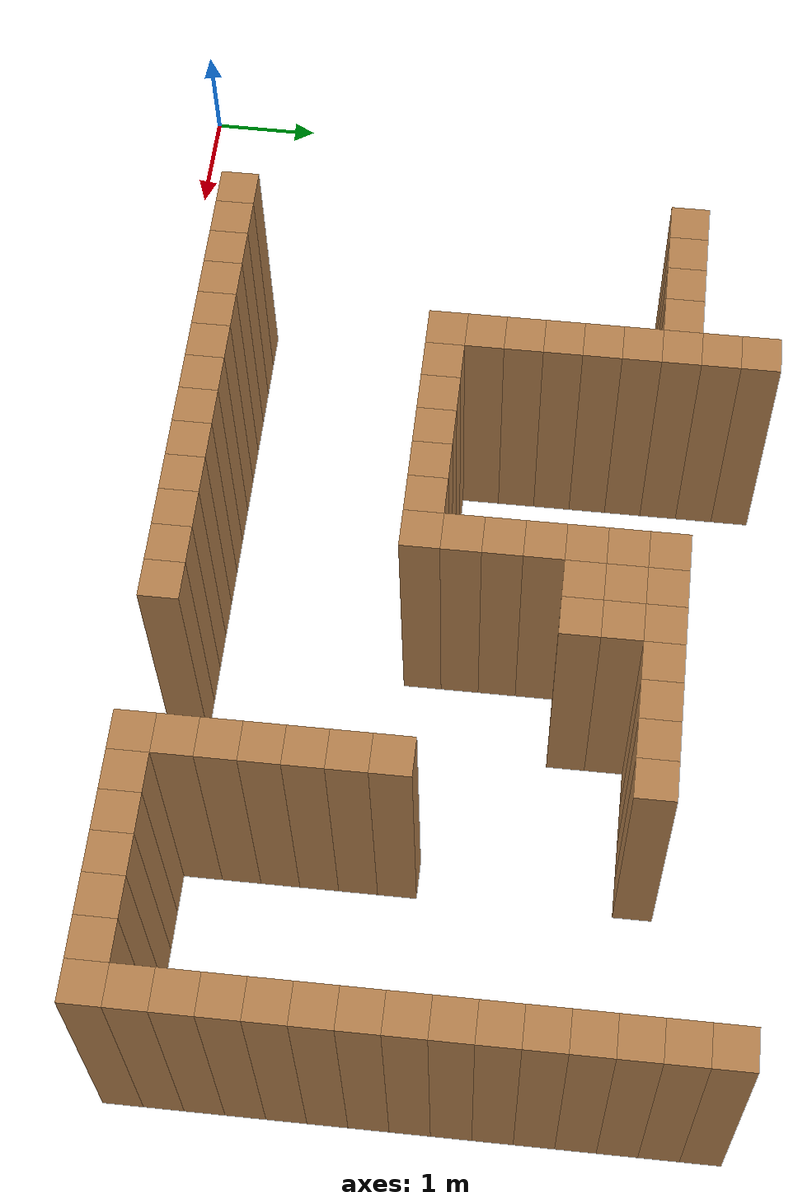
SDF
<sdf version="1.7">
 <model name="maze">
  <static>true</static>
  <link name="Wall_120">
   <collision name="Wall_120_Collision">
    <geometry><box><size>0.3333333333333333 0.3333333333333333 2.5</size></box></geometry>
    <pose>0 0 1.25 0 0 0</pose>
   </collision>
   <visual name="Wall_120_Visual">
    <pose>0 0 1.25 0 0 0</pose>
    <geometry><box><size>0.3333333333333333 0.3333333333333333 2.5</size></box></geometry>
    <material>
     <script><uri>file://media/materials/scripts/gazebo.material</uri><name>Gazebo/Wood</name></script>
     <ambient>1 1 1 1</ambient>
    </material>
    <meta><layer>0</layer></meta>
   </visual>
   <pose>4.166666666666667 5.5 0 0 0 0</pose>
  </link>
  <link name="Wall_121">
   <collision name="Wall_121_Collision">
    <geometry><box><size>0.3333333333333333 0.3333333333333333 2.5</size></box></geometry>
    <pose>0 0 1.25 0 0 0</pose>
   </collision>
   <visual name="Wall_121_Visual">
    <pose>0 0 1.25 0 0 0</pose>
    <geometry><box><size>0.3333333333333333 0.3333333333333333 2.5</size></box></geometry>
    <material>
     <script><uri>file://media/materials/scripts/gazebo.material</uri><name>Gazebo/Wood</name></script>
     <ambient>1 1 1 1</ambient>
    </material>
    <meta><layer>0</layer></meta>
   </visual>
   <pose>10.166666666666666 5.5 0 0 0 0</pose>
  </link>
  <link name="Wall_123">
   <collision name="Wall_123_Collision">
    <geometry><box><size>0.3333333333333333 0.3333333333333333 2.5</size></box></geometry>
    <pose>0 0 1.25 0 0 0</pose>
   </collision>
   <visual name="Wall_123_Visual">
    <pose>0 0 1.25 0 0 0</pose>
    <geometry><box><size>0.3333333333333333 0.3333333333333333 2.5</size></box></geometry>
    <material>
     <script><uri>file://media/materials/scripts/gazebo.material</uri><name>Gazebo/Wood</name></script>
     <ambient>1 1 1 1</ambient>
    </material>
    <meta><layer>0</layer></meta>
   </visual>
   <pose>4.166666666666667 5.166666666666667 0 0 0 0</pose>
  </link>
  <link name="Wall_124">
   <collision name="Wall_124_Collision">
    <geometry><box><size>0.3333333333333333 0.3333333333333333 2.5</size></box></geometry>
    <pose>0 0 1.25 0 0 0</pose>
   </collision>
   <visual name="Wall_124_Visual">
    <pose>0 0 1.25 0 0 0</pose>
    <geometry><box><size>0.3333333333333333 0.3333333333333333 2.5</size></box></geometry>
    <material>
     <script><uri>file://media/materials/scripts/gazebo.material</uri><name>Gazebo/Wood</name></script>
     <ambient>1 1 1 1</ambient>
    </material>
    <meta><layer>0</layer></meta>
   </visual>
   <pose>10.166666666666666 5.166666666666667 0 0 0 0</pose>
  </link>
  <link name="Wall_128">
   <collision name="Wall_128_Collision">
    <geometry><box><size>0.3333333333333333 0.3333333333333333 2.5</size></box></geometry>
    <pose>0 0 1.25 0 0 0</pose>
   </collision>
   <visual name="Wall_128_Visual">
    <pose>0 0 1.25 0 0 0</pose>
    <geometry><box><size>0.3333333333333333 0.3333333333333333 2.5</size></box></geometry>
    <material>
     <script><uri>file://media/materials/scripts/gazebo.material</uri><name>Gazebo/Wood</name></script>
     <ambient>1 1 1 1</ambient>
    </material>
    <meta><layer>0</layer></meta>
   </visual>
   <pose>2.833333333333333 4.833333333333333 0 0 0 0</pose>
  </link>
  <link name="Wall_129">
   <collision name="Wall_129_Collision">
    <geometry><box><size>0.3333333333333333 0.3333333333333333 2.5</size></box></geometry>
    <pose>0 0 1.25 0 0 0</pose>
   </collision>
   <visual name="Wall_129_Visual">
    <pose>0 0 1.25 0 0 0</pose>
    <geometry><box><size>0.3333333333333333 0.3333333333333333 2.5</size></box></geometry>
    <material>
     <script><uri>file://media/materials/scripts/gazebo.material</uri><name>Gazebo/Wood</name></script>
     <ambient>1 1 1 1</ambient>
    </material>
    <meta><layer>0</layer></meta>
   </visual>
   <pose>3.1666666666666665 4.833333333333333 0 0 0 0</pose>
  </link>
  <link name="Wall_130">
   <collision name="Wall_130_Collision">
    <geometry><box><size>0.3333333333333333 0.3333333333333333 2.5</size></box></geometry>
    <pose>0 0 1.25 0 0 0</pose>
   </collision>
   <visual name="Wall_130_Visual">
    <pose>0 0 1.25 0 0 0</pose>
    <geometry><box><size>0.3333333333333333 0.3333333333333333 2.5</size></box></geometry>
    <material>
     <script><uri>file://media/materials/scripts/gazebo.material</uri><name>Gazebo/Wood</name></script>
     <ambient>1 1 1 1</ambient>
    </material>
    <meta><layer>0</layer></meta>
   </visual>
   <pose>3.4999999999999996 4.833333333333333 0 0 0 0</pose>
  </link>
  <link name="Wall_131">
   <collision name="Wall_131_Collision">
    <geometry><box><size>0.3333333333333333 0.3333333333333333 2.5</size></box></geometry>
    <pose>0 0 1.25 0 0 0</pose>
   </collision>
   <visual name="Wall_131_Visual">
    <pose>0 0 1.25 0 0 0</pose>
    <geometry><box><size>0.3333333333333333 0.3333333333333333 2.5</size></box></geometry>
    <material>
     <script><uri>file://media/materials/scripts/gazebo.material</uri><name>Gazebo/Wood</name></script>
     <ambient>1 1 1 1</ambient>
    </material>
    <meta><layer>0</layer></meta>
   </visual>
   <pose>3.833333333333333 4.833333333333333 0 0 0 0</pose>
  </link>
  <link name="Wall_132">
   <collision name="Wall_132_Collision">
    <geometry><box><size>0.3333333333333333 0.3333333333333333 2.5</size></box></geometry>
    <pose>0 0 1.25 0 0 0</pose>
   </collision>
   <visual name="Wall_132_Visual">
    <pose>0 0 1.25 0 0 0</pose>
    <geometry><box><size>0.3333333333333333 0.3333333333333333 2.5</size></box></geometry>
    <material>
     <script><uri>file://media/materials/scripts/gazebo.material</uri><name>Gazebo/Wood</name></script>
     <ambient>1 1 1 1</ambient>
    </material>
    <meta><layer>0</layer></meta>
   </visual>
   <pose>4.166666666666667 4.833333333333333 0 0 0 0</pose>
  </link>
  <link name="Wall_133">
   <collision name="Wall_133_Collision">
    <geometry><box><size>0.3333333333333333 0.3333333333333333 2.5</size></box></geometry>
    <pose>0 0 1.25 0 0 0</pose>
   </collision>
   <visual name="Wall_133_Visual">
    <pose>0 0 1.25 0 0 0</pose>
    <geometry><box><size>0.3333333333333333 0.3333333333333333 2.5</size></box></geometry>
    <material>
     <script><uri>file://media/materials/scripts/gazebo.material</uri><name>Gazebo/Wood</name></script>
     <ambient>1 1 1 1</ambient>
    </material>
    <meta><layer>0</layer></meta>
   </visual>
   <pose>6.166666666666667 4.833333333333333 0 0 0 0</pose>
  </link>
  <link name="Wall_134">
   <collision name="Wall_134_Collision">
    <geometry><box><size>0.3333333333333333 0.3333333333333333 2.5</size></box></geometry>
    <pose>0 0 1.25 0 0 0</pose>
   </collision>
   <visual name="Wall_134_Visual">
    <pose>0 0 1.25 0 0 0</pose>
    <geometry><box><size>0.3333333333333333 0.3333333333333333 2.5</size></box></geometry>
    <material>
     <script><uri>file://media/materials/scripts/gazebo.material</uri><name>Gazebo/Wood</name></script>
     <ambient>1 1 1 1</ambient>
    </material>
    <meta><layer>0</layer></meta>
   </visual>
   <pose>6.5 4.833333333333333 0 0 0 0</pose>
  </link>
  <link name="Wall_135">
   <collision name="Wall_135_Collision">
    <geometry><box><size>0.3333333333333333 0.3333333333333333 2.5</size></box></geometry>
    <pose>0 0 1.25 0 0 0</pose>
   </collision>
   <visual name="Wall_135_Visual">
    <pose>0 0 1.25 0 0 0</pose>
    <geometry><box><size>0.3333333333333333 0.3333333333333333 2.5</size></box></geometry>
    <material>
     <script><uri>file://media/materials/scripts/gazebo.material</uri><name>Gazebo/Wood</name></script>
     <ambient>1 1 1 1</ambient>
    </material>
    <meta><layer>0</layer></meta>
   </visual>
   <pose>6.833333333333333 4.833333333333333 0 0 0 0</pose>
  </link>
  <link name="Wall_136">
   <collision name="Wall_136_Collision">
    <geometry><box><size>0.3333333333333333 0.3333333333333333 2.5</size></box></geometry>
    <pose>0 0 1.25 0 0 0</pose>
   </collision>
   <visual name="Wall_136_Visual">
    <pose>0 0 1.25 0 0 0</pose>
    <geometry><box><size>0.3333333333333333 0.3333333333333333 2.5</size></box></geometry>
    <material>
     <script><uri>file://media/materials/scripts/gazebo.material</uri><name>Gazebo/Wood</name></script>
     <ambient>1 1 1 1</ambient>
    </material>
    <meta><layer>0</layer></meta>
   </visual>
   <pose>7.166666666666667 4.833333333333333 0 0 0 0</pose>
  </link>
  <link name="Wall_137">
   <collision name="Wall_137_Collision">
    <geometry><box><size>0.3333333333333333 0.3333333333333333 2.5</size></box></geometry>
    <pose>0 0 1.25 0 0 0</pose>
   </collision>
   <visual name="Wall_137_Visual">
    <pose>0 0 1.25 0 0 0</pose>
    <geometry><box><size>0.3333333333333333 0.3333333333333333 2.5</size></box></geometry>
    <material>
     <script><uri>file://media/materials/scripts/gazebo.material</uri><name>Gazebo/Wood</name></script>
     <ambient>1 1 1 1</ambient>
    </material>
    <meta><layer>0</layer></meta>
   </visual>
   <pose>7.5 4.833333333333333 0 0 0 0</pose>
  </link>
  <link name="Wall_138">
   <collision name="Wall_138_Collision">
    <geometry><box><size>0.3333333333333333 0.3333333333333333 2.5</size></box></geometry>
    <pose>0 0 1.25 0 0 0</pose>
   </collision>
   <visual name="Wall_138_Visual">
    <pose>0 0 1.25 0 0 0</pose>
    <geometry><box><size>0.3333333333333333 0.3333333333333333 2.5</size></box></geometry>
    <material>
     <script><uri>file://media/materials/scripts/gazebo.material</uri><name>Gazebo/Wood</name></script>
     <ambient>1 1 1 1</ambient>
    </material>
    <meta><layer>0</layer></meta>
   </visual>
   <pose>7.833333333333333 4.833333333333333 0 0 0 0</pose>
  </link>
  <link name="Wall_139">
   <collision name="Wall_139_Collision">
    <geometry><box><size>0.3333333333333333 0.3333333333333333 2.5</size></box></geometry>
    <pose>0 0 1.25 0 0 0</pose>
   </collision>
   <visual name="Wall_139_Visual">
    <pose>0 0 1.25 0 0 0</pose>
    <geometry><box><size>0.3333333333333333 0.3333333333333333 2.5</size></box></geometry>
    <material>
     <script><uri>file://media/materials/scripts/gazebo.material</uri><name>Gazebo/Wood</name></script>
     <ambient>1 1 1 1</ambient>
    </material>
    <meta><layer>0</layer></meta>
   </visual>
   <pose>8.166666666666666 4.833333333333333 0 0 0 0</pose>
  </link>
  <link name="Wall_140">
   <collision name="Wall_140_Collision">
    <geometry><box><size>0.3333333333333333 0.3333333333333333 2.5</size></box></geometry>
    <pose>0 0 1.25 0 0 0</pose>
   </collision>
   <visual name="Wall_140_Visual">
    <pose>0 0 1.25 0 0 0</pose>
    <geometry><box><size>0.3333333333333333 0.3333333333333333 2.5</size></box></geometry>
    <material>
     <script><uri>file://media/materials/scripts/gazebo.material</uri><name>Gazebo/Wood</name></script>
     <ambient>1 1 1 1</ambient>
    </material>
    <meta><layer>0</layer></meta>
   </visual>
   <pose>10.166666666666666 4.833333333333333 0 0 0 0</pose>
  </link>
  <link name="Wall_142">
   <collision name="Wall_142_Collision">
    <geometry><box><size>0.3333333333333333 0.3333333333333333 2.5</size></box></geometry>
    <pose>0 0 1.25 0 0 0</pose>
   </collision>
   <visual name="Wall_142_Visual">
    <pose>0 0 1.25 0 0 0</pose>
    <geometry><box><size>0.3333333333333333 0.3333333333333333 2.5</size></box></geometry>
    <material>
     <script><uri>file://media/materials/scripts/gazebo.material</uri><name>Gazebo/Wood</name></script>
     <ambient>1 1 1 1</ambient>
    </material>
    <meta><layer>0</layer></meta>
   </visual>
   <pose>4.166666666666667 4.5 0 0 0 0</pose>
  </link>
  <link name="Wall_143">
   <collision name="Wall_143_Collision">
    <geometry><box><size>0.3333333333333333 0.3333333333333333 2.5</size></box></geometry>
    <pose>0 0 1.25 0 0 0</pose>
   </collision>
   <visual name="Wall_143_Visual">
    <pose>0 0 1.25 0 0 0</pose>
    <geometry><box><size>0.3333333333333333 0.3333333333333333 2.5</size></box></geometry>
    <material>
     <script><uri>file://media/materials/scripts/gazebo.material</uri><name>Gazebo/Wood</name></script>
     <ambient>1 1 1 1</ambient>
    </material>
    <meta><layer>0</layer></meta>
   </visual>
   <pose>6.166666666666667 4.5 0 0 0 0</pose>
  </link>
  <link name="Wall_144">
   <collision name="Wall_144_Collision">
    <geometry><box><size>0.3333333333333333 0.3333333333333333 2.5</size></box></geometry>
    <pose>0 0 1.25 0 0 0</pose>
   </collision>
   <visual name="Wall_144_Visual">
    <pose>0 0 1.25 0 0 0</pose>
    <geometry><box><size>0.3333333333333333 0.3333333333333333 2.5</size></box></geometry>
    <material>
     <script><uri>file://media/materials/scripts/gazebo.material</uri><name>Gazebo/Wood</name></script>
     <ambient>1 1 1 1</ambient>
    </material>
    <meta><layer>0</layer></meta>
   </visual>
   <pose>6.5 4.5 0 0 0 0</pose>
  </link>
  <link name="Wall_145">
   <collision name="Wall_145_Collision">
    <geometry><box><size>0.3333333333333333 0.3333333333333333 2.5</size></box></geometry>
    <pose>0 0 1.25 0 0 0</pose>
   </collision>
   <visual name="Wall_145_Visual">
    <pose>0 0 1.25 0 0 0</pose>
    <geometry><box><size>0.3333333333333333 0.3333333333333333 2.5</size></box></geometry>
    <material>
     <script><uri>file://media/materials/scripts/gazebo.material</uri><name>Gazebo/Wood</name></script>
     <ambient>1 1 1 1</ambient>
    </material>
    <meta><layer>0</layer></meta>
   </visual>
   <pose>6.833333333333333 4.5 0 0 0 0</pose>
  </link>
  <link name="Wall_146">
   <collision name="Wall_146_Collision">
    <geometry><box><size>0.3333333333333333 0.3333333333333333 2.5</size></box></geometry>
    <pose>0 0 1.25 0 0 0</pose>
   </collision>
   <visual name="Wall_146_Visual">
    <pose>0 0 1.25 0 0 0</pose>
    <geometry><box><size>0.3333333333333333 0.3333333333333333 2.5</size></box></geometry>
    <material>
     <script><uri>file://media/materials/scripts/gazebo.material</uri><name>Gazebo/Wood</name></script>
     <ambient>1 1 1 1</ambient>
    </material>
    <meta><layer>0</layer></meta>
   </visual>
   <pose>10.166666666666666 4.5 0 0 0 0</pose>
  </link>
  <link name="Wall_148">
   <collision name="Wall_148_Collision">
    <geometry><box><size>0.3333333333333333 0.3333333333333333 2.5</size></box></geometry>
    <pose>0 0 1.25 0 0 0</pose>
   </collision>
   <visual name="Wall_148_Visual">
    <pose>0 0 1.25 0 0 0</pose>
    <geometry><box><size>0.3333333333333333 0.3333333333333333 2.5</size></box></geometry>
    <material>
     <script><uri>file://media/materials/scripts/gazebo.material</uri><name>Gazebo/Wood</name></script>
     <ambient>1 1 1 1</ambient>
    </material>
    <meta><layer>0</layer></meta>
   </visual>
   <pose>4.166666666666667 4.166666666666667 0 0 0 0</pose>
  </link>
  <link name="Wall_149">
   <collision name="Wall_149_Collision">
    <geometry><box><size>0.3333333333333333 0.3333333333333333 2.5</size></box></geometry>
    <pose>0 0 1.25 0 0 0</pose>
   </collision>
   <visual name="Wall_149_Visual">
    <pose>0 0 1.25 0 0 0</pose>
    <geometry><box><size>0.3333333333333333 0.3333333333333333 2.5</size></box></geometry>
    <material>
     <script><uri>file://media/materials/scripts/gazebo.material</uri><name>Gazebo/Wood</name></script>
     <ambient>1 1 1 1</ambient>
    </material>
    <meta><layer>0</layer></meta>
   </visual>
   <pose>6.166666666666667 4.166666666666667 0 0 0 0</pose>
  </link>
  <link name="Wall_150">
   <collision name="Wall_150_Collision">
    <geometry><box><size>0.3333333333333333 0.3333333333333333 2.5</size></box></geometry>
    <pose>0 0 1.25 0 0 0</pose>
   </collision>
   <visual name="Wall_150_Visual">
    <pose>0 0 1.25 0 0 0</pose>
    <geometry><box><size>0.3333333333333333 0.3333333333333333 2.5</size></box></geometry>
    <material>
     <script><uri>file://media/materials/scripts/gazebo.material</uri><name>Gazebo/Wood</name></script>
     <ambient>1 1 1 1</ambient>
    </material>
    <meta><layer>0</layer></meta>
   </visual>
   <pose>6.5 4.166666666666667 0 0 0 0</pose>
  </link>
  <link name="Wall_151">
   <collision name="Wall_151_Collision">
    <geometry><box><size>0.3333333333333333 0.3333333333333333 2.5</size></box></geometry>
    <pose>0 0 1.25 0 0 0</pose>
   </collision>
   <visual name="Wall_151_Visual">
    <pose>0 0 1.25 0 0 0</pose>
    <geometry><box><size>0.3333333333333333 0.3333333333333333 2.5</size></box></geometry>
    <material>
     <script><uri>file://media/materials/scripts/gazebo.material</uri><name>Gazebo/Wood</name></script>
     <ambient>1 1 1 1</ambient>
    </material>
    <meta><layer>0</layer></meta>
   </visual>
   <pose>6.833333333333333 4.166666666666667 0 0 0 0</pose>
  </link>
  <link name="Wall_152">
   <collision name="Wall_152_Collision">
    <geometry><box><size>0.3333333333333333 0.3333333333333333 2.5</size></box></geometry>
    <pose>0 0 1.25 0 0 0</pose>
   </collision>
   <visual name="Wall_152_Visual">
    <pose>0 0 1.25 0 0 0</pose>
    <geometry><box><size>0.3333333333333333 0.3333333333333333 2.5</size></box></geometry>
    <material>
     <script><uri>file://media/materials/scripts/gazebo.material</uri><name>Gazebo/Wood</name></script>
     <ambient>1 1 1 1</ambient>
    </material>
    <meta><layer>0</layer></meta>
   </visual>
   <pose>10.166666666666666 4.166666666666667 0 0 0 0</pose>
  </link>
  <link name="Wall_154">
   <collision name="Wall_154_Collision">
    <geometry><box><size>0.3333333333333333 0.3333333333333333 2.5</size></box></geometry>
    <pose>0 0 1.25 0 0 0</pose>
   </collision>
   <visual name="Wall_154_Visual">
    <pose>0 0 1.25 0 0 0</pose>
    <geometry><box><size>0.3333333333333333 0.3333333333333333 2.5</size></box></geometry>
    <material>
     <script><uri>file://media/materials/scripts/gazebo.material</uri><name>Gazebo/Wood</name></script>
     <ambient>1 1 1 1</ambient>
    </material>
    <meta><layer>0</layer></meta>
   </visual>
   <pose>4.166666666666667 3.833333333333333 0 0 0 0</pose>
  </link>
  <link name="Wall_155">
   <collision name="Wall_155_Collision">
    <geometry><box><size>0.3333333333333333 0.3333333333333333 2.5</size></box></geometry>
    <pose>0 0 1.25 0 0 0</pose>
   </collision>
   <visual name="Wall_155_Visual">
    <pose>0 0 1.25 0 0 0</pose>
    <geometry><box><size>0.3333333333333333 0.3333333333333333 2.5</size></box></geometry>
    <material>
     <script><uri>file://media/materials/scripts/gazebo.material</uri><name>Gazebo/Wood</name></script>
     <ambient>1 1 1 1</ambient>
    </material>
    <meta><layer>0</layer></meta>
   </visual>
   <pose>6.166666666666667 3.833333333333333 0 0 0 0</pose>
  </link>
  <link name="Wall_156">
   <collision name="Wall_156_Collision">
    <geometry><box><size>0.3333333333333333 0.3333333333333333 2.5</size></box></geometry>
    <pose>0 0 1.25 0 0 0</pose>
   </collision>
   <visual name="Wall_156_Visual">
    <pose>0 0 1.25 0 0 0</pose>
    <geometry><box><size>0.3333333333333333 0.3333333333333333 2.5</size></box></geometry>
    <material>
     <script><uri>file://media/materials/scripts/gazebo.material</uri><name>Gazebo/Wood</name></script>
     <ambient>1 1 1 1</ambient>
    </material>
    <meta><layer>0</layer></meta>
   </visual>
   <pose>10.166666666666666 3.833333333333333 0 0 0 0</pose>
  </link>
  <link name="Wall_158">
   <collision name="Wall_158_Collision">
    <geometry><box><size>0.3333333333333333 0.3333333333333333 2.5</size></box></geometry>
    <pose>0 0 1.25 0 0 0</pose>
   </collision>
   <visual name="Wall_158_Visual">
    <pose>0 0 1.25 0 0 0</pose>
    <geometry><box><size>0.3333333333333333 0.3333333333333333 2.5</size></box></geometry>
    <material>
     <script><uri>file://media/materials/scripts/gazebo.material</uri><name>Gazebo/Wood</name></script>
     <ambient>1 1 1 1</ambient>
    </material>
    <meta><layer>0</layer></meta>
   </visual>
   <pose>4.166666666666667 3.4999999999999996 0 0 0 0</pose>
  </link>
  <link name="Wall_159">
   <collision name="Wall_159_Collision">
    <geometry><box><size>0.3333333333333333 0.3333333333333333 2.5</size></box></geometry>
    <pose>0 0 1.25 0 0 0</pose>
   </collision>
   <visual name="Wall_159_Visual">
    <pose>0 0 1.25 0 0 0</pose>
    <geometry><box><size>0.3333333333333333 0.3333333333333333 2.5</size></box></geometry>
    <material>
     <script><uri>file://media/materials/scripts/gazebo.material</uri><name>Gazebo/Wood</name></script>
     <ambient>1 1 1 1</ambient>
    </material>
    <meta><layer>0</layer></meta>
   </visual>
   <pose>6.166666666666667 3.4999999999999996 0 0 0 0</pose>
  </link>
  <link name="Wall_160">
   <collision name="Wall_160_Collision">
    <geometry><box><size>0.3333333333333333 0.3333333333333333 2.5</size></box></geometry>
    <pose>0 0 1.25 0 0 0</pose>
   </collision>
   <visual name="Wall_160_Visual">
    <pose>0 0 1.25 0 0 0</pose>
    <geometry><box><size>0.3333333333333333 0.3333333333333333 2.5</size></box></geometry>
    <material>
     <script><uri>file://media/materials/scripts/gazebo.material</uri><name>Gazebo/Wood</name></script>
     <ambient>1 1 1 1</ambient>
    </material>
    <meta><layer>0</layer></meta>
   </visual>
   <pose>10.166666666666666 3.4999999999999996 0 0 0 0</pose>
  </link>
  <link name="Wall_162">
   <collision name="Wall_162_Collision">
    <geometry><box><size>0.3333333333333333 0.3333333333333333 2.5</size></box></geometry>
    <pose>0 0 1.25 0 0 0</pose>
   </collision>
   <visual name="Wall_162_Visual">
    <pose>0 0 1.25 0 0 0</pose>
    <geometry><box><size>0.3333333333333333 0.3333333333333333 2.5</size></box></geometry>
    <material>
     <script><uri>file://media/materials/scripts/gazebo.material</uri><name>Gazebo/Wood</name></script>
     <ambient>1 1 1 1</ambient>
    </material>
    <meta><layer>0</layer></meta>
   </visual>
   <pose>4.166666666666667 3.1666666666666665 0 0 0 0</pose>
  </link>
  <link name="Wall_163">
   <collision name="Wall_163_Collision">
    <geometry><box><size>0.3333333333333333 0.3333333333333333 2.5</size></box></geometry>
    <pose>0 0 1.25 0 0 0</pose>
   </collision>
   <visual name="Wall_163_Visual">
    <pose>0 0 1.25 0 0 0</pose>
    <geometry><box><size>0.3333333333333333 0.3333333333333333 2.5</size></box></geometry>
    <material>
     <script><uri>file://media/materials/scripts/gazebo.material</uri><name>Gazebo/Wood</name></script>
     <ambient>1 1 1 1</ambient>
    </material>
    <meta><layer>0</layer></meta>
   </visual>
   <pose>6.166666666666667 3.1666666666666665 0 0 0 0</pose>
  </link>
  <link name="Wall_164">
   <collision name="Wall_164_Collision">
    <geometry><box><size>0.3333333333333333 0.3333333333333333 2.5</size></box></geometry>
    <pose>0 0 1.25 0 0 0</pose>
   </collision>
   <visual name="Wall_164_Visual">
    <pose>0 0 1.25 0 0 0</pose>
    <geometry><box><size>0.3333333333333333 0.3333333333333333 2.5</size></box></geometry>
    <material>
     <script><uri>file://media/materials/scripts/gazebo.material</uri><name>Gazebo/Wood</name></script>
     <ambient>1 1 1 1</ambient>
    </material>
    <meta><layer>0</layer></meta>
   </visual>
   <pose>10.166666666666666 3.1666666666666665 0 0 0 0</pose>
  </link>
  <link name="Wall_172">
   <collision name="Wall_172_Collision">
    <geometry><box><size>0.3333333333333333 0.3333333333333333 2.5</size></box></geometry>
    <pose>0 0 1.25 0 0 0</pose>
   </collision>
   <visual name="Wall_172_Visual">
    <pose>0 0 1.25 0 0 0</pose>
    <geometry><box><size>0.3333333333333333 0.3333333333333333 2.5</size></box></geometry>
    <material>
     <script><uri>file://media/materials/scripts/gazebo.material</uri><name>Gazebo/Wood</name></script>
     <ambient>1 1 1 1</ambient>
    </material>
    <meta><layer>0</layer></meta>
   </visual>
   <pose>4.166666666666667 2.833333333333333 0 0 0 0</pose>
  </link>
  <link name="Wall_173">
   <collision name="Wall_173_Collision">
    <geometry><box><size>0.3333333333333333 0.3333333333333333 2.5</size></box></geometry>
    <pose>0 0 1.25 0 0 0</pose>
   </collision>
   <visual name="Wall_173_Visual">
    <pose>0 0 1.25 0 0 0</pose>
    <geometry><box><size>0.3333333333333333 0.3333333333333333 2.5</size></box></geometry>
    <material>
     <script><uri>file://media/materials/scripts/gazebo.material</uri><name>Gazebo/Wood</name></script>
     <ambient>1 1 1 1</ambient>
    </material>
    <meta><layer>0</layer></meta>
   </visual>
   <pose>4.5 2.833333333333333 0 0 0 0</pose>
  </link>
  <link name="Wall_174">
   <collision name="Wall_174_Collision">
    <geometry><box><size>0.3333333333333333 0.3333333333333333 2.5</size></box></geometry>
    <pose>0 0 1.25 0 0 0</pose>
   </collision>
   <visual name="Wall_174_Visual">
    <pose>0 0 1.25 0 0 0</pose>
    <geometry><box><size>0.3333333333333333 0.3333333333333333 2.5</size></box></geometry>
    <material>
     <script><uri>file://media/materials/scripts/gazebo.material</uri><name>Gazebo/Wood</name></script>
     <ambient>1 1 1 1</ambient>
    </material>
    <meta><layer>0</layer></meta>
   </visual>
   <pose>4.833333333333333 2.833333333333333 0 0 0 0</pose>
  </link>
  <link name="Wall_175">
   <collision name="Wall_175_Collision">
    <geometry><box><size>0.3333333333333333 0.3333333333333333 2.5</size></box></geometry>
    <pose>0 0 1.25 0 0 0</pose>
   </collision>
   <visual name="Wall_175_Visual">
    <pose>0 0 1.25 0 0 0</pose>
    <geometry><box><size>0.3333333333333333 0.3333333333333333 2.5</size></box></geometry>
    <material>
     <script><uri>file://media/materials/scripts/gazebo.material</uri><name>Gazebo/Wood</name></script>
     <ambient>1 1 1 1</ambient>
    </material>
    <meta><layer>0</layer></meta>
   </visual>
   <pose>5.166666666666667 2.833333333333333 0 0 0 0</pose>
  </link>
  <link name="Wall_176">
   <collision name="Wall_176_Collision">
    <geometry><box><size>0.3333333333333333 0.3333333333333333 2.5</size></box></geometry>
    <pose>0 0 1.25 0 0 0</pose>
   </collision>
   <visual name="Wall_176_Visual">
    <pose>0 0 1.25 0 0 0</pose>
    <geometry><box><size>0.3333333333333333 0.3333333333333333 2.5</size></box></geometry>
    <material>
     <script><uri>file://media/materials/scripts/gazebo.material</uri><name>Gazebo/Wood</name></script>
     <ambient>1 1 1 1</ambient>
    </material>
    <meta><layer>0</layer></meta>
   </visual>
   <pose>5.5 2.833333333333333 0 0 0 0</pose>
  </link>
  <link name="Wall_177">
   <collision name="Wall_177_Collision">
    <geometry><box><size>0.3333333333333333 0.3333333333333333 2.5</size></box></geometry>
    <pose>0 0 1.25 0 0 0</pose>
   </collision>
   <visual name="Wall_177_Visual">
    <pose>0 0 1.25 0 0 0</pose>
    <geometry><box><size>0.3333333333333333 0.3333333333333333 2.5</size></box></geometry>
    <material>
     <script><uri>file://media/materials/scripts/gazebo.material</uri><name>Gazebo/Wood</name></script>
     <ambient>1 1 1 1</ambient>
    </material>
    <meta><layer>0</layer></meta>
   </visual>
   <pose>5.833333333333333 2.833333333333333 0 0 0 0</pose>
  </link>
  <link name="Wall_178">
   <collision name="Wall_178_Collision">
    <geometry><box><size>0.3333333333333333 0.3333333333333333 2.5</size></box></geometry>
    <pose>0 0 1.25 0 0 0</pose>
   </collision>
   <visual name="Wall_178_Visual">
    <pose>0 0 1.25 0 0 0</pose>
    <geometry><box><size>0.3333333333333333 0.3333333333333333 2.5</size></box></geometry>
    <material>
     <script><uri>file://media/materials/scripts/gazebo.material</uri><name>Gazebo/Wood</name></script>
     <ambient>1 1 1 1</ambient>
    </material>
    <meta><layer>0</layer></meta>
   </visual>
   <pose>6.166666666666667 2.833333333333333 0 0 0 0</pose>
  </link>
  <link name="Wall_179">
   <collision name="Wall_179_Collision">
    <geometry><box><size>0.3333333333333333 0.3333333333333333 2.5</size></box></geometry>
    <pose>0 0 1.25 0 0 0</pose>
   </collision>
   <visual name="Wall_179_Visual">
    <pose>0 0 1.25 0 0 0</pose>
    <geometry><box><size>0.3333333333333333 0.3333333333333333 2.5</size></box></geometry>
    <material>
     <script><uri>file://media/materials/scripts/gazebo.material</uri><name>Gazebo/Wood</name></script>
     <ambient>1 1 1 1</ambient>
    </material>
    <meta><layer>0</layer></meta>
   </visual>
   <pose>8.166666666666666 2.833333333333333 0 0 0 0</pose>
  </link>
  <link name="Wall_180">
   <collision name="Wall_180_Collision">
    <geometry><box><size>0.3333333333333333 0.3333333333333333 2.5</size></box></geometry>
    <pose>0 0 1.25 0 0 0</pose>
   </collision>
   <visual name="Wall_180_Visual">
    <pose>0 0 1.25 0 0 0</pose>
    <geometry><box><size>0.3333333333333333 0.3333333333333333 2.5</size></box></geometry>
    <material>
     <script><uri>file://media/materials/scripts/gazebo.material</uri><name>Gazebo/Wood</name></script>
     <ambient>1 1 1 1</ambient>
    </material>
    <meta><layer>0</layer></meta>
   </visual>
   <pose>10.166666666666666 2.833333333333333 0 0 0 0</pose>
  </link>
  <link name="Wall_184">
   <collision name="Wall_184_Collision">
    <geometry><box><size>0.3333333333333333 0.3333333333333333 2.5</size></box></geometry>
    <pose>0 0 1.25 0 0 0</pose>
   </collision>
   <visual name="Wall_184_Visual">
    <pose>0 0 1.25 0 0 0</pose>
    <geometry><box><size>0.3333333333333333 0.3333333333333333 2.5</size></box></geometry>
    <material>
     <script><uri>file://media/materials/scripts/gazebo.material</uri><name>Gazebo/Wood</name></script>
     <ambient>1 1 1 1</ambient>
    </material>
    <meta><layer>0</layer></meta>
   </visual>
   <pose>8.166666666666666 2.4999999999999996 0 0 0 0</pose>
  </link>
  <link name="Wall_185">
   <collision name="Wall_185_Collision">
    <geometry><box><size>0.3333333333333333 0.3333333333333333 2.5</size></box></geometry>
    <pose>0 0 1.25 0 0 0</pose>
   </collision>
   <visual name="Wall_185_Visual">
    <pose>0 0 1.25 0 0 0</pose>
    <geometry><box><size>0.3333333333333333 0.3333333333333333 2.5</size></box></geometry>
    <material>
     <script><uri>file://media/materials/scripts/gazebo.material</uri><name>Gazebo/Wood</name></script>
     <ambient>1 1 1 1</ambient>
    </material>
    <meta><layer>0</layer></meta>
   </visual>
   <pose>10.166666666666666 2.4999999999999996 0 0 0 0</pose>
  </link>
  <link name="Wall_189">
   <collision name="Wall_189_Collision">
    <geometry><box><size>0.3333333333333333 0.3333333333333333 2.5</size></box></geometry>
    <pose>0 0 1.25 0 0 0</pose>
   </collision>
   <visual name="Wall_189_Visual">
    <pose>0 0 1.25 0 0 0</pose>
    <geometry><box><size>0.3333333333333333 0.3333333333333333 2.5</size></box></geometry>
    <material>
     <script><uri>file://media/materials/scripts/gazebo.material</uri><name>Gazebo/Wood</name></script>
     <ambient>1 1 1 1</ambient>
    </material>
    <meta><layer>0</layer></meta>
   </visual>
   <pose>8.166666666666666 2.1666666666666665 0 0 0 0</pose>
  </link>
  <link name="Wall_190">
   <collision name="Wall_190_Collision">
    <geometry><box><size>0.3333333333333333 0.3333333333333333 2.5</size></box></geometry>
    <pose>0 0 1.25 0 0 0</pose>
   </collision>
   <visual name="Wall_190_Visual">
    <pose>0 0 1.25 0 0 0</pose>
    <geometry><box><size>0.3333333333333333 0.3333333333333333 2.5</size></box></geometry>
    <material>
     <script><uri>file://media/materials/scripts/gazebo.material</uri><name>Gazebo/Wood</name></script>
     <ambient>1 1 1 1</ambient>
    </material>
    <meta><layer>0</layer></meta>
   </visual>
   <pose>10.166666666666666 2.1666666666666665 0 0 0 0</pose>
  </link>
  <link name="Wall_192">
   <collision name="Wall_192_Collision">
    <geometry><box><size>0.3333333333333333 0.3333333333333333 2.5</size></box></geometry>
    <pose>0 0 1.25 0 0 0</pose>
   </collision>
   <visual name="Wall_192_Visual">
    <pose>0 0 1.25 0 0 0</pose>
    <geometry><box><size>0.3333333333333333 0.3333333333333333 2.5</size></box></geometry>
    <material>
     <script><uri>file://media/materials/scripts/gazebo.material</uri><name>Gazebo/Wood</name></script>
     <ambient>1 1 1 1</ambient>
    </material>
    <meta><layer>0</layer></meta>
   </visual>
   <pose>8.166666666666666 1.8333333333333333 0 0 0 0</pose>
  </link>
  <link name="Wall_193">
   <collision name="Wall_193_Collision">
    <geometry><box><size>0.3333333333333333 0.3333333333333333 2.5</size></box></geometry>
    <pose>0 0 1.25 0 0 0</pose>
   </collision>
   <visual name="Wall_193_Visual">
    <pose>0 0 1.25 0 0 0</pose>
    <geometry><box><size>0.3333333333333333 0.3333333333333333 2.5</size></box></geometry>
    <material>
     <script><uri>file://media/materials/scripts/gazebo.material</uri><name>Gazebo/Wood</name></script>
     <ambient>1 1 1 1</ambient>
    </material>
    <meta><layer>0</layer></meta>
   </visual>
   <pose>10.166666666666666 1.8333333333333333 0 0 0 0</pose>
  </link>
  <link name="Wall_195">
   <collision name="Wall_195_Collision">
    <geometry><box><size>0.3333333333333333 0.3333333333333333 2.5</size></box></geometry>
    <pose>0 0 1.25 0 0 0</pose>
   </collision>
   <visual name="Wall_195_Visual">
    <pose>0 0 1.25 0 0 0</pose>
    <geometry><box><size>0.3333333333333333 0.3333333333333333 2.5</size></box></geometry>
    <material>
     <script><uri>file://media/materials/scripts/gazebo.material</uri><name>Gazebo/Wood</name></script>
     <ambient>1 1 1 1</ambient>
    </material>
    <meta><layer>0</layer></meta>
   </visual>
   <pose>8.166666666666666 1.5 0 0 0 0</pose>
  </link>
  <link name="Wall_196">
   <collision name="Wall_196_Collision">
    <geometry><box><size>0.3333333333333333 0.3333333333333333 2.5</size></box></geometry>
    <pose>0 0 1.25 0 0 0</pose>
   </collision>
   <visual name="Wall_196_Visual">
    <pose>0 0 1.25 0 0 0</pose>
    <geometry><box><size>0.3333333333333333 0.3333333333333333 2.5</size></box></geometry>
    <material>
     <script><uri>file://media/materials/scripts/gazebo.material</uri><name>Gazebo/Wood</name></script>
     <ambient>1 1 1 1</ambient>
    </material>
    <meta><layer>0</layer></meta>
   </visual>
   <pose>10.166666666666666 1.5 0 0 0 0</pose>
  </link>
  <link name="Wall_198">
   <collision name="Wall_198_Collision">
    <geometry><box><size>0.3333333333333333 0.3333333333333333 2.5</size></box></geometry>
    <pose>0 0 1.25 0 0 0</pose>
   </collision>
   <visual name="Wall_198_Visual">
    <pose>0 0 1.25 0 0 0</pose>
    <geometry><box><size>0.3333333333333333 0.3333333333333333 2.5</size></box></geometry>
    <material>
     <script><uri>file://media/materials/scripts/gazebo.material</uri><name>Gazebo/Wood</name></script>
     <ambient>1 1 1 1</ambient>
    </material>
    <meta><layer>0</layer></meta>
   </visual>
   <pose>8.166666666666666 1.1666666666666667 0 0 0 0</pose>
  </link>
  <link name="Wall_199">
   <collision name="Wall_199_Collision">
    <geometry><box><size>0.3333333333333333 0.3333333333333333 2.5</size></box></geometry>
    <pose>0 0 1.25 0 0 0</pose>
   </collision>
   <visual name="Wall_199_Visual">
    <pose>0 0 1.25 0 0 0</pose>
    <geometry><box><size>0.3333333333333333 0.3333333333333333 2.5</size></box></geometry>
    <material>
     <script><uri>file://media/materials/scripts/gazebo.material</uri><name>Gazebo/Wood</name></script>
     <ambient>1 1 1 1</ambient>
    </material>
    <meta><layer>0</layer></meta>
   </visual>
   <pose>10.166666666666666 1.1666666666666667 0 0 0 0</pose>
  </link>
  <link name="Wall_205">
   <collision name="Wall_205_Collision">
    <geometry><box><size>0.3333333333333333 0.3333333333333333 2.5</size></box></geometry>
    <pose>0 0 1.25 0 0 0</pose>
   </collision>
   <visual name="Wall_205_Visual">
    <pose>0 0 1.25 0 0 0</pose>
    <geometry><box><size>0.3333333333333333 0.3333333333333333 2.5</size></box></geometry>
    <material>
     <script><uri>file://media/materials/scripts/gazebo.material</uri><name>Gazebo/Wood</name></script>
     <ambient>1 1 1 1</ambient>
    </material>
    <meta><layer>0</layer></meta>
   </visual>
   <pose>2.833333333333333 0.8333333333333333 0 0 0 0</pose>
  </link>
  <link name="Wall_206">
   <collision name="Wall_206_Collision">
    <geometry><box><size>0.3333333333333333 0.3333333333333333 2.5</size></box></geometry>
    <pose>0 0 1.25 0 0 0</pose>
   </collision>
   <visual name="Wall_206_Visual">
    <pose>0 0 1.25 0 0 0</pose>
    <geometry><box><size>0.3333333333333333 0.3333333333333333 2.5</size></box></geometry>
    <material>
     <script><uri>file://media/materials/scripts/gazebo.material</uri><name>Gazebo/Wood</name></script>
     <ambient>1 1 1 1</ambient>
    </material>
    <meta><layer>0</layer></meta>
   </visual>
   <pose>3.1666666666666665 0.8333333333333333 0 0 0 0</pose>
  </link>
  <link name="Wall_207">
   <collision name="Wall_207_Collision">
    <geometry><box><size>0.3333333333333333 0.3333333333333333 2.5</size></box></geometry>
    <pose>0 0 1.25 0 0 0</pose>
   </collision>
   <visual name="Wall_207_Visual">
    <pose>0 0 1.25 0 0 0</pose>
    <geometry><box><size>0.3333333333333333 0.3333333333333333 2.5</size></box></geometry>
    <material>
     <script><uri>file://media/materials/scripts/gazebo.material</uri><name>Gazebo/Wood</name></script>
     <ambient>1 1 1 1</ambient>
    </material>
    <meta><layer>0</layer></meta>
   </visual>
   <pose>3.4999999999999996 0.8333333333333333 0 0 0 0</pose>
  </link>
  <link name="Wall_208">
   <collision name="Wall_208_Collision">
    <geometry><box><size>0.3333333333333333 0.3333333333333333 2.5</size></box></geometry>
    <pose>0 0 1.25 0 0 0</pose>
   </collision>
   <visual name="Wall_208_Visual">
    <pose>0 0 1.25 0 0 0</pose>
    <geometry><box><size>0.3333333333333333 0.3333333333333333 2.5</size></box></geometry>
    <material>
     <script><uri>file://media/materials/scripts/gazebo.material</uri><name>Gazebo/Wood</name></script>
     <ambient>1 1 1 1</ambient>
    </material>
    <meta><layer>0</layer></meta>
   </visual>
   <pose>3.833333333333333 0.8333333333333333 0 0 0 0</pose>
  </link>
  <link name="Wall_209">
   <collision name="Wall_209_Collision">
    <geometry><box><size>0.3333333333333333 0.3333333333333333 2.5</size></box></geometry>
    <pose>0 0 1.25 0 0 0</pose>
   </collision>
   <visual name="Wall_209_Visual">
    <pose>0 0 1.25 0 0 0</pose>
    <geometry><box><size>0.3333333333333333 0.3333333333333333 2.5</size></box></geometry>
    <material>
     <script><uri>file://media/materials/scripts/gazebo.material</uri><name>Gazebo/Wood</name></script>
     <ambient>1 1 1 1</ambient>
    </material>
    <meta><layer>0</layer></meta>
   </visual>
   <pose>4.166666666666667 0.8333333333333333 0 0 0 0</pose>
  </link>
  <link name="Wall_210">
   <collision name="Wall_210_Collision">
    <geometry><box><size>0.3333333333333333 0.3333333333333333 2.5</size></box></geometry>
    <pose>0 0 1.25 0 0 0</pose>
   </collision>
   <visual name="Wall_210_Visual">
    <pose>0 0 1.25 0 0 0</pose>
    <geometry><box><size>0.3333333333333333 0.3333333333333333 2.5</size></box></geometry>
    <material>
     <script><uri>file://media/materials/scripts/gazebo.material</uri><name>Gazebo/Wood</name></script>
     <ambient>1 1 1 1</ambient>
    </material>
    <meta><layer>0</layer></meta>
   </visual>
   <pose>4.5 0.8333333333333333 0 0 0 0</pose>
  </link>
  <link name="Wall_211">
   <collision name="Wall_211_Collision">
    <geometry><box><size>0.3333333333333333 0.3333333333333333 2.5</size></box></geometry>
    <pose>0 0 1.25 0 0 0</pose>
   </collision>
   <visual name="Wall_211_Visual">
    <pose>0 0 1.25 0 0 0</pose>
    <geometry><box><size>0.3333333333333333 0.3333333333333333 2.5</size></box></geometry>
    <material>
     <script><uri>file://media/materials/scripts/gazebo.material</uri><name>Gazebo/Wood</name></script>
     <ambient>1 1 1 1</ambient>
    </material>
    <meta><layer>0</layer></meta>
   </visual>
   <pose>4.833333333333333 0.8333333333333333 0 0 0 0</pose>
  </link>
  <link name="Wall_212">
   <collision name="Wall_212_Collision">
    <geometry><box><size>0.3333333333333333 0.3333333333333333 2.5</size></box></geometry>
    <pose>0 0 1.25 0 0 0</pose>
   </collision>
   <visual name="Wall_212_Visual">
    <pose>0 0 1.25 0 0 0</pose>
    <geometry><box><size>0.3333333333333333 0.3333333333333333 2.5</size></box></geometry>
    <material>
     <script><uri>file://media/materials/scripts/gazebo.material</uri><name>Gazebo/Wood</name></script>
     <ambient>1 1 1 1</ambient>
    </material>
    <meta><layer>0</layer></meta>
   </visual>
   <pose>5.166666666666667 0.8333333333333333 0 0 0 0</pose>
  </link>
  <link name="Wall_213">
   <collision name="Wall_213_Collision">
    <geometry><box><size>0.3333333333333333 0.3333333333333333 2.5</size></box></geometry>
    <pose>0 0 1.25 0 0 0</pose>
   </collision>
   <visual name="Wall_213_Visual">
    <pose>0 0 1.25 0 0 0</pose>
    <geometry><box><size>0.3333333333333333 0.3333333333333333 2.5</size></box></geometry>
    <material>
     <script><uri>file://media/materials/scripts/gazebo.material</uri><name>Gazebo/Wood</name></script>
     <ambient>1 1 1 1</ambient>
    </material>
    <meta><layer>0</layer></meta>
   </visual>
   <pose>5.5 0.8333333333333333 0 0 0 0</pose>
  </link>
  <link name="Wall_214">
   <collision name="Wall_214_Collision">
    <geometry><box><size>0.3333333333333333 0.3333333333333333 2.5</size></box></geometry>
    <pose>0 0 1.25 0 0 0</pose>
   </collision>
   <visual name="Wall_214_Visual">
    <pose>0 0 1.25 0 0 0</pose>
    <geometry><box><size>0.3333333333333333 0.3333333333333333 2.5</size></box></geometry>
    <material>
     <script><uri>file://media/materials/scripts/gazebo.material</uri><name>Gazebo/Wood</name></script>
     <ambient>1 1 1 1</ambient>
    </material>
    <meta><layer>0</layer></meta>
   </visual>
   <pose>5.833333333333333 0.8333333333333333 0 0 0 0</pose>
  </link>
  <link name="Wall_215">
   <collision name="Wall_215_Collision">
    <geometry><box><size>0.3333333333333333 0.3333333333333333 2.5</size></box></geometry>
    <pose>0 0 1.25 0 0 0</pose>
   </collision>
   <visual name="Wall_215_Visual">
    <pose>0 0 1.25 0 0 0</pose>
    <geometry><box><size>0.3333333333333333 0.3333333333333333 2.5</size></box></geometry>
    <material>
     <script><uri>file://media/materials/scripts/gazebo.material</uri><name>Gazebo/Wood</name></script>
     <ambient>1 1 1 1</ambient>
    </material>
    <meta><layer>0</layer></meta>
   </visual>
   <pose>6.166666666666667 0.8333333333333333 0 0 0 0</pose>
  </link>
  <link name="Wall_216">
   <collision name="Wall_216_Collision">
    <geometry><box><size>0.3333333333333333 0.3333333333333333 2.5</size></box></geometry>
    <pose>0 0 1.25 0 0 0</pose>
   </collision>
   <visual name="Wall_216_Visual">
    <pose>0 0 1.25 0 0 0</pose>
    <geometry><box><size>0.3333333333333333 0.3333333333333333 2.5</size></box></geometry>
    <material>
     <script><uri>file://media/materials/scripts/gazebo.material</uri><name>Gazebo/Wood</name></script>
     <ambient>1 1 1 1</ambient>
    </material>
    <meta><layer>0</layer></meta>
   </visual>
   <pose>6.5 0.8333333333333333 0 0 0 0</pose>
  </link>
  <link name="Wall_217">
   <collision name="Wall_217_Collision">
    <geometry><box><size>0.3333333333333333 0.3333333333333333 2.5</size></box></geometry>
    <pose>0 0 1.25 0 0 0</pose>
   </collision>
   <visual name="Wall_217_Visual">
    <pose>0 0 1.25 0 0 0</pose>
    <geometry><box><size>0.3333333333333333 0.3333333333333333 2.5</size></box></geometry>
    <material>
     <script><uri>file://media/materials/scripts/gazebo.material</uri><name>Gazebo/Wood</name></script>
     <ambient>1 1 1 1</ambient>
    </material>
    <meta><layer>0</layer></meta>
   </visual>
   <pose>6.833333333333333 0.8333333333333333 0 0 0 0</pose>
  </link>
  <link name="Wall_218">
   <collision name="Wall_218_Collision">
    <geometry><box><size>0.3333333333333333 0.3333333333333333 2.5</size></box></geometry>
    <pose>0 0 1.25 0 0 0</pose>
   </collision>
   <visual name="Wall_218_Visual">
    <pose>0 0 1.25 0 0 0</pose>
    <geometry><box><size>0.3333333333333333 0.3333333333333333 2.5</size></box></geometry>
    <material>
     <script><uri>file://media/materials/scripts/gazebo.material</uri><name>Gazebo/Wood</name></script>
     <ambient>1 1 1 1</ambient>
    </material>
    <meta><layer>0</layer></meta>
   </visual>
   <pose>8.166666666666666 0.8333333333333333 0 0 0 0</pose>
  </link>
  <link name="Wall_219">
   <collision name="Wall_219_Collision">
    <geometry><box><size>0.3333333333333333 0.3333333333333333 2.5</size></box></geometry>
    <pose>0 0 1.25 0 0 0</pose>
   </collision>
   <visual name="Wall_219_Visual">
    <pose>0 0 1.25 0 0 0</pose>
    <geometry><box><size>0.3333333333333333 0.3333333333333333 2.5</size></box></geometry>
    <material>
     <script><uri>file://media/materials/scripts/gazebo.material</uri><name>Gazebo/Wood</name></script>
     <ambient>1 1 1 1</ambient>
    </material>
    <meta><layer>0</layer></meta>
   </visual>
   <pose>8.499999999999998 0.8333333333333333 0 0 0 0</pose>
  </link>
  <link name="Wall_220">
   <collision name="Wall_220_Collision">
    <geometry><box><size>0.3333333333333333 0.3333333333333333 2.5</size></box></geometry>
    <pose>0 0 1.25 0 0 0</pose>
   </collision>
   <visual name="Wall_220_Visual">
    <pose>0 0 1.25 0 0 0</pose>
    <geometry><box><size>0.3333333333333333 0.3333333333333333 2.5</size></box></geometry>
    <material>
     <script><uri>file://media/materials/scripts/gazebo.material</uri><name>Gazebo/Wood</name></script>
     <ambient>1 1 1 1</ambient>
    </material>
    <meta><layer>0</layer></meta>
   </visual>
   <pose>8.833333333333332 0.8333333333333333 0 0 0 0</pose>
  </link>
  <link name="Wall_221">
   <collision name="Wall_221_Collision">
    <geometry><box><size>0.3333333333333333 0.3333333333333333 2.5</size></box></geometry>
    <pose>0 0 1.25 0 0 0</pose>
   </collision>
   <visual name="Wall_221_Visual">
    <pose>0 0 1.25 0 0 0</pose>
    <geometry><box><size>0.3333333333333333 0.3333333333333333 2.5</size></box></geometry>
    <material>
     <script><uri>file://media/materials/scripts/gazebo.material</uri><name>Gazebo/Wood</name></script>
     <ambient>1 1 1 1</ambient>
    </material>
    <meta><layer>0</layer></meta>
   </visual>
   <pose>9.166666666666666 0.8333333333333333 0 0 0 0</pose>
  </link>
  <link name="Wall_222">
   <collision name="Wall_222_Collision">
    <geometry><box><size>0.3333333333333333 0.3333333333333333 2.5</size></box></geometry>
    <pose>0 0 1.25 0 0 0</pose>
   </collision>
   <visual name="Wall_222_Visual">
    <pose>0 0 1.25 0 0 0</pose>
    <geometry><box><size>0.3333333333333333 0.3333333333333333 2.5</size></box></geometry>
    <material>
     <script><uri>file://media/materials/scripts/gazebo.material</uri><name>Gazebo/Wood</name></script>
     <ambient>1 1 1 1</ambient>
    </material>
    <meta><layer>0</layer></meta>
   </visual>
   <pose>9.499999999999998 0.8333333333333333 0 0 0 0</pose>
  </link>
  <link name="Wall_223">
   <collision name="Wall_223_Collision">
    <geometry><box><size>0.3333333333333333 0.3333333333333333 2.5</size></box></geometry>
    <pose>0 0 1.25 0 0 0</pose>
   </collision>
   <visual name="Wall_223_Visual">
    <pose>0 0 1.25 0 0 0</pose>
    <geometry><box><size>0.3333333333333333 0.3333333333333333 2.5</size></box></geometry>
    <material>
     <script><uri>file://media/materials/scripts/gazebo.material</uri><name>Gazebo/Wood</name></script>
     <ambient>1 1 1 1</ambient>
    </material>
    <meta><layer>0</layer></meta>
   </visual>
   <pose>9.833333333333332 0.8333333333333333 0 0 0 0</pose>
  </link>
  <link name="Wall_224">
   <collision name="Wall_224_Collision">
    <geometry><box><size>0.3333333333333333 0.3333333333333333 2.5</size></box></geometry>
    <pose>0 0 1.25 0 0 0</pose>
   </collision>
   <visual name="Wall_224_Visual">
    <pose>0 0 1.25 0 0 0</pose>
    <geometry><box><size>0.3333333333333333 0.3333333333333333 2.5</size></box></geometry>
    <material>
     <script><uri>file://media/materials/scripts/gazebo.material</uri><name>Gazebo/Wood</name></script>
     <ambient>1 1 1 1</ambient>
    </material>
    <meta><layer>0</layer></meta>
   </visual>
   <pose>10.166666666666666 0.8333333333333333 0 0 0 0</pose>
  </link>
 </model>
</sdf>
